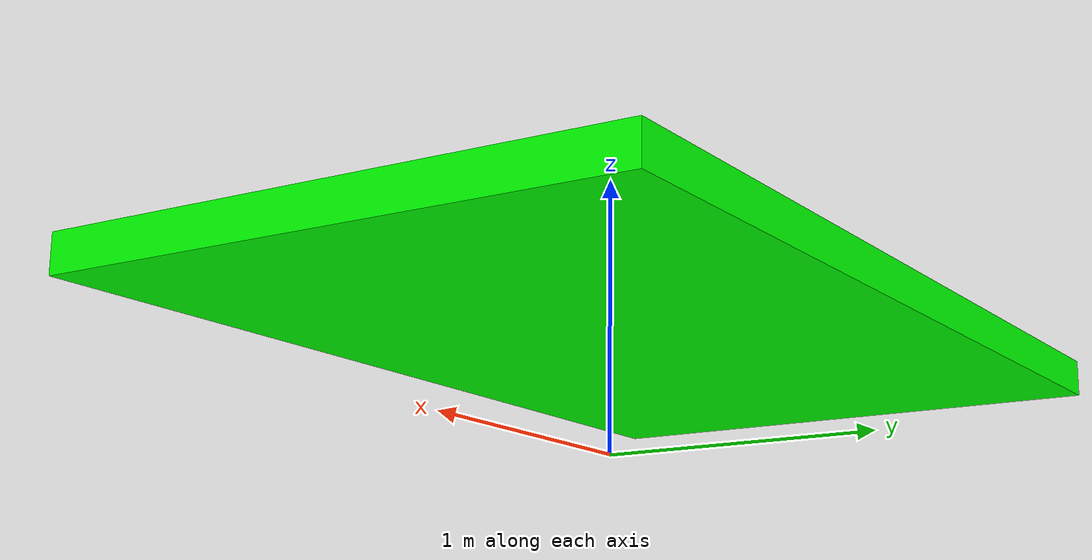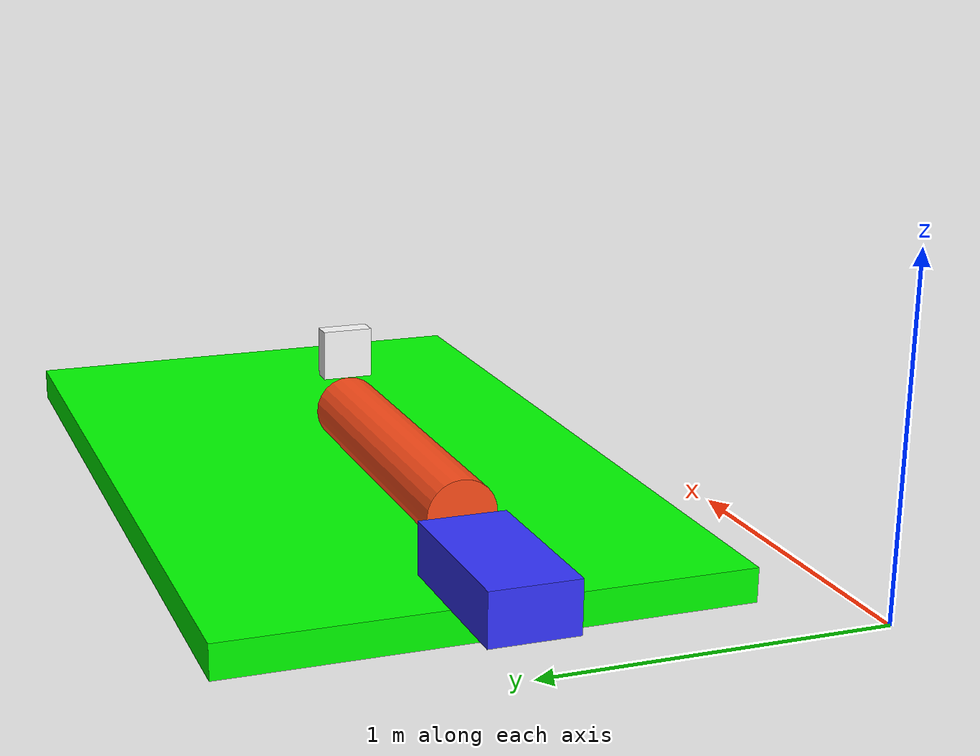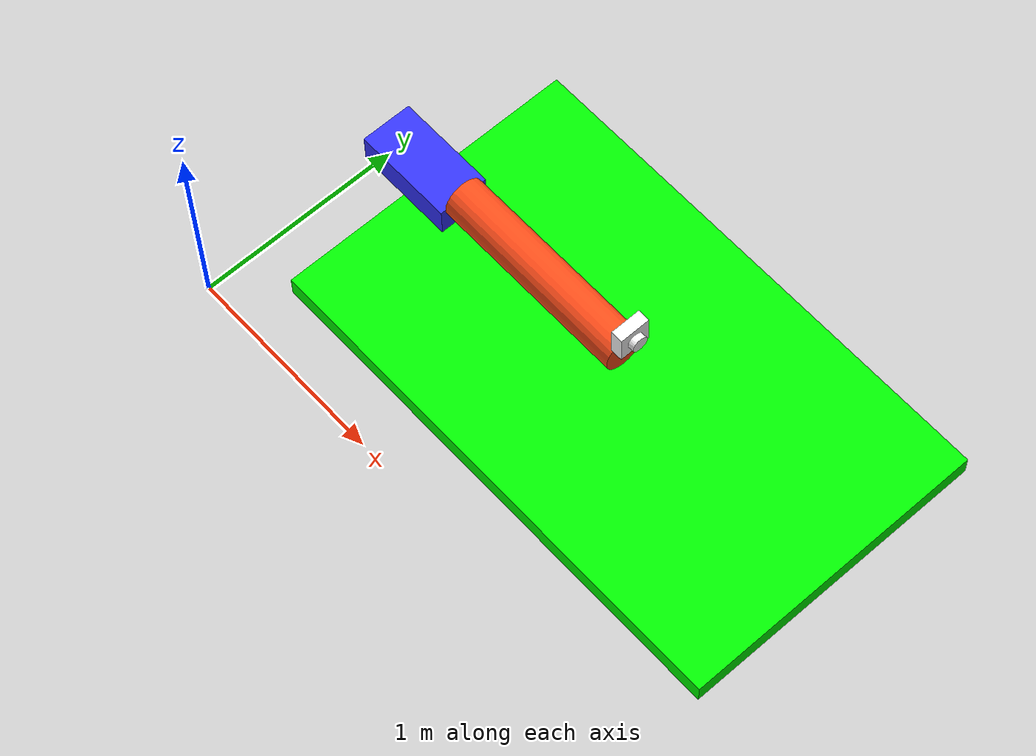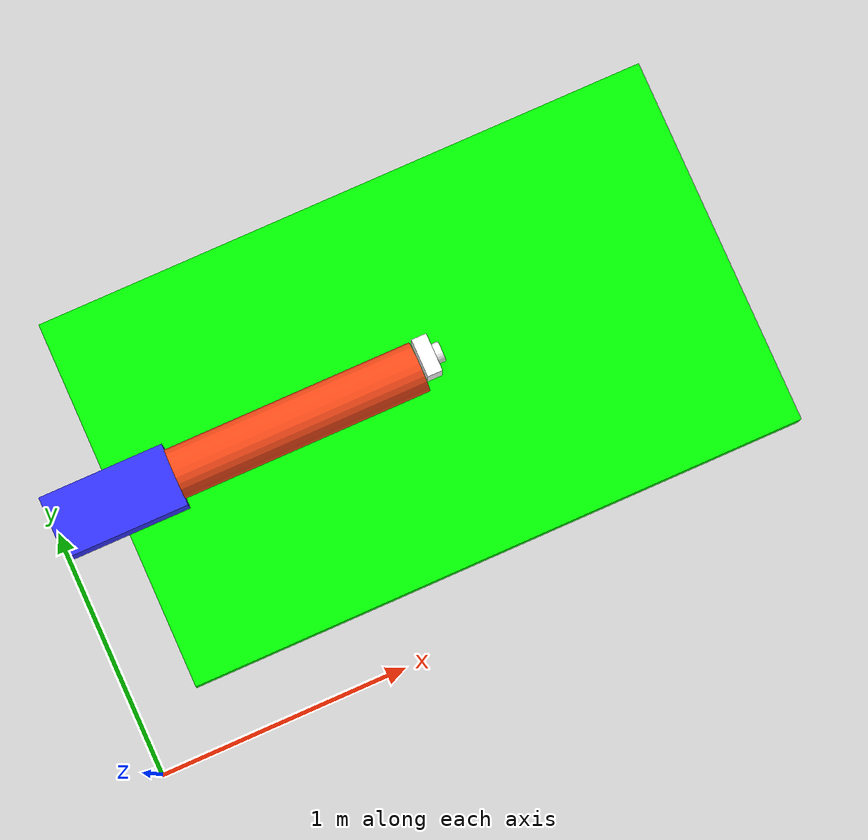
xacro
<?xml version="1.0"?>
<robot xmlns:xacro="http://www.ros.org/wiki/xacro" >

    <xacro:include filename="inertial_macros.xacro"/>

    <material name="white">
        <color rgba="1 1 1 1"/>
    </material>

    <material name="orange">
        <color rgba="1 0.3 0.1 1"/>
    </material>

    <material name="blue">
        <color rgba="0.2 0.2 1 1"/>
    </material>

    <material name="black">
        <color rgba="0 0 0 1"/>
    </material>
s
    <material name="green">
        <color rgba="0 1 0 1" />
    </material>

    <material name="red">
        <color rgba="1 0 0 1" />
    </material>

    <!-- WORLD LINK-->
    <link name="world"></link>

    <!-- BASE JOINT-->

    <joint name="base_joint" type="fixed">
        <parent link="world"/>
        <child link="base_link"/>
        <origin xyz="1.5 1 0" rpy="0 0 0"/>
    </joint>

    <!-- BASE LINK-->

    <link name="base_link">
        <visual>
            <origin xyz="0 0 0.05"/>
            <geometry>
                <box size="2.5 1.5 0.1"/>
            </geometry>
            <material name="green"/>
        </visual>
        <collision>
            <origin xyz="0 0 0.05"/>
            <geometry>
                <box size="2.5 1.5 0.1"/>
            </geometry>
        </collision>
        <xacro:inertial_box mass="12" x="2.5" y="1.5" z="0.1">
            <origin xyz="0 0 0.05"/>
        </xacro:inertial_box>
    </link>

    <!-- SLIDER JOINT-->

    <joint name="slider_joint" type="prismatic">
        <parent link="base_link"/>
        <child link="slider_link"/>
        <origin xyz="-1.25 0 0.1" rpy="0 0 0"/>
        <limit lower="0" upper="2" velocity="100" effort="100"/>
        <axis xyz="1 0 0"/>
        <dynamics damping="10.0" friction="10.0"/>
    </joint>

    <!-- SLIDER LINK-->

    <link name="slider_link">
        <visual>
            <geometry>
                <box size="0.5 0.25 0.15"/>
            </geometry>
            <origin xyz="0 0 0.075"/>
            <material name="blue"/>
        </visual>
        <collision>
            <geometry>
                <box size="0.5 0.25 0.15"/>
            </geometry>
            <origin xyz="0 0 0.075"/>
        </collision>
        <xacro:inertial_box mass="0.5" x="0.5" y="0.25" z="0.15">
            <origin xyz="0 0 0.075"/>
        </xacro:inertial_box>
    </link>

    <!-- ARM JOINT-->

    <joint name="arm_joint" type="revolute">
        <parent link="slider_link"/>
        <child link="arm_link"/>
        <origin xyz="0.25 0 0.15" rpy="0 0 0"/>
        <limit lower="0" upper="${pi/2}" velocity="100" effort="100"/>
        <axis xyz="0 -1 0"/>
        <dynamics damping="10.0" friction="10.0"/>
    </joint>

    <!-- ARM LINK-->

    <xacro:property name="arm_length" value="1"/>
    <xacro:property name="arm_radius" value="0.1"/>

    <link name="arm_link">
        <visual>
            <geometry>
                <cylinder length="${arm_length}" radius="${arm_radius}"/>
            </geometry>
            <origin xyz="${arm_length/2} 0 0" rpy="0 ${pi/2} 0"/>
            <material name="orange"/>
        </visual>
        <collision>
            <geometry>
                <cylinder length="${arm_length}" radius="${arm_radius}"/>
            </geometry>
            <origin xyz="${arm_length/2} 0 0" rpy="0 ${pi/2} 0"/>
        </collision>
        <xacro:inertial_cylinder mass="1.0" length="${arm_length}" radius="${arm_radius}">
            <origin xyz="${arm_length/2} 0 0" rpy="0 ${pi/2} 0"/>
        </xacro:inertial_cylinder>
    </link>

    <!-- CAMERA JOINT-->

    <joint name="camera_joint" type="fixed">
        <parent link="arm_link"/>
        <child link="camera_link"/>
        <origin xyz="${arm_length} 0 ${arm_radius + 0.075}" rpy="0 0 0"/>
    </joint>

     <!-- CAMERA LINK-->

    <link name="camera_link">
        <visual>
            <geometry>
                <box size="0.06 0.15 0.15"/>
            </geometry>
            <origin xyz="0.03 0 0"/>
            <material name="white"/>
        </visual>
        <visual>
            <geometry>
                <cylinder length="0.06" radius="0.04"/>
            </geometry>
            <origin xyz="0.06 0 0" rpy="0 ${pi/2} 0"/>
            <material name="white"/>
        </visual>
        <collision>
            <geometry>
                <box size="0.09 0.15 0.15"/>
            </geometry>
            <origin xyz="0.045 0 0"/>
        </collision>
        <xacro:inertial_box mass="0.1" x="0.09" y="0.15" z="0.15">
            <origin xyz="0.045 0 0" rpy="0 0 0"/>
        </xacro:inertial_box>
    </link>

    <xacro:include filename="example_gazebo.xacro" />

</robot>

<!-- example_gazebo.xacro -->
<robot xmlns:xacro="http://www.ros.org/wiki/xacro">

    <!-- Instead, we need to add gazebo tags for our links that refer to Gazebo materials -->

    <gazebo reference="base_link">
        <material>Gazebo/Green</material>
    </gazebo>

    <gazebo reference="slider_link">
        <material>Gazebo/Blue</material>
    </gazebo>

    <gazebo reference="arm_link">
        <material>Gazebo/Orange</material>
    </gazebo>

        <!-- Gazebo requires the use of plugins to interact with other systems such as ROS. -->

    <!-- This plugin will publish the joint_states for the selected joints
            (which robot_state_publisher can then use to broadcast the approprate tf). -->

    <gazebo>
        <plugin name="gazebo_ros_joint_state_publisher"
            filename="libgazebo_ros_joint_state_publisher.so">
            <update_rate>20</update_rate>
            <joint_name>slider_joint</joint_name>
            <joint_name>arm_joint</joint_name>
        </plugin>
    </gazebo>

    <!-- This plugin will read a JointTrajectory message from the /set_joint_trajectory topic
            and move the machine accordingly. It's a bit clunky but it works. -->
    <gazebo>
        <plugin name="gazebo_ros_joint_pose_trajectory"
            filename="libgazebo_ros_joint_pose_trajectory.so">
            <update_rate>20</update_rate>
        </plugin>
    </gazebo>

        <!-- The next section shows an example of adding a sensor, in this case a depth camera. -->

    <!-- First, create the link and joint for the optical frame -->

    <joint name="camera_optical_joint" type="fixed">
        <origin xyz="0 0 0" rpy="-1.571 0 -1.571" />
        <parent link="camera_link" />
        <child link="camera_link_optical" />
    </joint>

    <link name="camera_link_optical"></link>

    <!-- Add a gazebo tag for the ORIGINAL camera_link (but in the plugin we reference the optical frame so that ROS can orient things correctly) -->
    <!-- Note that although visualise is set to true, it won't actually visualise the depth camera in gazebo. To see the preview,
            try swapping "depth" to "camera"-->
    <gazebo reference="camera_link">
        <sensor type="camera" name="my_camera">
            <update_rate>20</update_rate>
            <visualize>true</visualize>
            <camera name="cam">
                <horizontal_fov>1.3962634</horizontal_fov>
                <image>
                    <width>640</width>
                    <height>480</height>
                    <format>R8B8G8</format>
                </image>
                <clip>
                    <near>0.02</near>
                    <far>300</far>
                </clip>
                <noise>
                    <type>gaussian</type>
                    <mean>0.0</mean>
                    <stddev>0.007</stddev>
                </noise>
            </camera>
            <plugin name="camera_controller" filename="libgazebo_ros_camera.so">
                <frame_name>camera_link_optical</frame_name>
                <min_depth>0.1</min_depth>
                <max_depth>500</max_depth>
            </plugin>
        </sensor>
    </gazebo>

</robot>
